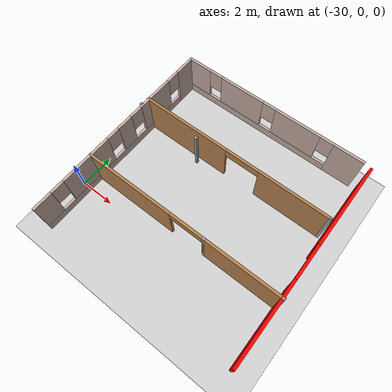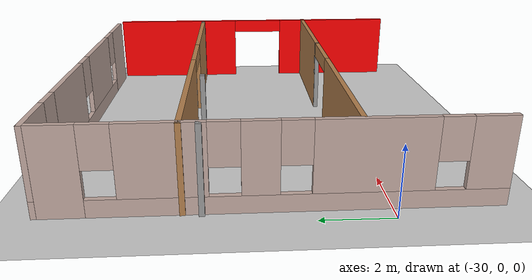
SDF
<sdf version="1.6">
 <world name="default">
  <model name="ground_plane">
   <static>1</static>
   <link name="link">
    <collision name="collision">
     <geometry><plane><normal>0 0 1</normal><size>100 100</size></plane></geometry>
     <surface><friction><ode><mu>100</mu><mu2>50</mu2></ode></friction></surface>
    </collision>
    <visual name="visual">
     <cast_shadows>0</cast_shadows>
     <geometry><plane><normal>0 0 1</normal><size>100 100</size></plane></geometry>
     <material>
      <script><uri>file://media/materials/scripts/gazebo.material</uri><name>Gazebo/Grey</name></script>
     </material>
    </visual>
   </link>
  </model>
  <model name="FloorPlan">
   <pose>0.30947 -3.19534 0 0 -0 0</pose>
   <link name="Wall_11">
    <pose>-18.2258 6.2811 0 0 -0 -1.5708</pose>
    <visual name="Wall_11_Visual_0">
     <pose>-3.31145 0 1.25 0 -0 0</pose>
     <geometry><box><size>4.97711 0.15 2.5</size></box></geometry>
     <material>
      <script><uri>file://media/materials/scripts/gazebo.material</uri><name>Gazebo/Grey</name></script>
      <ambient>1 0 0 1</ambient>
     </material>
     <meta><layer>0</layer></meta>
    </visual>
    <collision name="Wall_11_Collision_0">
     <geometry><box><size>4.97711 0.15 2.5</size></box></geometry>
     <pose>-3.31145 0 1.25 0 -0 0</pose>
    </collision>
    <visual name="Wall_11_Visual_1">
     <pose>3.48855 0 1.25 0 -0 0</pose>
     <geometry><box><size>4.62289 0.15 2.5</size></box></geometry>
     <material>
      <script><uri>file://media/materials/scripts/gazebo.material</uri><name>Gazebo/Grey</name></script>
      <ambient>1 0 0 1</ambient>
     </material>
     <meta><layer>0</layer></meta>
    </visual>
    <collision name="Wall_11_Collision_1">
     <geometry><box><size>4.62289 0.15 2.5</size></box></geometry>
     <pose>3.48855 0 1.25 0 -0 0</pose>
    </collision>
    <visual name="Wall_11_Visual_2">
     <pose>0.177109 0 2.25 0 -0 0</pose>
     <geometry><box><size>2 0.15 0.5</size></box></geometry>
     <material>
      <script><uri>file://media/materials/scripts/gazebo.material</uri><name>Gazebo/Grey</name></script>
      <ambient>1 0 0 1</ambient>
     </material>
     <meta><layer>0</layer></meta>
    </visual>
    <collision name="Wall_11_Collision_2">
     <geometry><box><size>2 0.15 0.5</size></box></geometry>
     <pose>0.177109 0 2.25 0 -0 0</pose>
    </collision>
   </link>
   <link name="Wall_13">
    <pose>-24.2574 12.1498 0 0 -0 3.14159</pose>
    <visual name="Wall_13_Visual_0">
     <pose>-4.7442 0 1.25 0 -0 0</pose>
     <geometry><box><size>1.7616 0.15 2.5</size></box></geometry>
     <material>
      <script><uri>file://media/materials/scripts/gazebo.material</uri><name>Gazebo/Grey</name></script>
      <ambient>0.760784 0.662745 0.627451 1</ambient>
     </material>
     <meta><layer>0</layer></meta>
    </visual>
    <collision name="Wall_13_Collision_0">
     <geometry><box><size>1.7616 0.15 2.5</size></box></geometry>
     <pose>-4.7442 0 1.25 0 -0 0</pose>
    </collision>
    <visual name="Wall_13_Visual_1">
     <pose>0.880798 0 0.25 0 -0 0</pose>
     <geometry><box><size>9.4884 0.15 0.5</size></box></geometry>
     <material>
      <script><uri>file://media/materials/scripts/gazebo.material</uri><name>Gazebo/Grey</name></script>
      <ambient>0.760784 0.662745 0.627451 1</ambient>
     </material>
     <meta><layer>0</layer></meta>
    </visual>
    <collision name="Wall_13_Collision_1">
     <geometry><box><size>9.4884 0.15 0.5</size></box></geometry>
     <pose>0.880798 0 0.25 0 -0 0</pose>
    </collision>
    <visual name="Wall_13_Visual_2">
     <pose>-1.67107 0 1.5 0 -0 0</pose>
     <geometry><box><size>2.78467 0.15 2</size></box></geometry>
     <material>
      <script><uri>file://media/materials/scripts/gazebo.material</uri><name>Gazebo/Grey</name></script>
      <ambient>0.760784 0.662745 0.627451 1</ambient>
     </material>
     <meta><layer>0</layer></meta>
    </visual>
    <collision name="Wall_13_Collision_2">
     <geometry><box><size>2.78467 0.15 2</size></box></geometry>
     <pose>-1.67107 0 1.5 0 -0 0</pose>
    </collision>
    <visual name="Wall_13_Visual_3">
     <pose>1.9136 0 1.5 0 -0 0</pose>
     <geometry><box><size>2.78467 0.15 2</size></box></geometry>
     <material>
      <script><uri>file://media/materials/scripts/gazebo.material</uri><name>Gazebo/Grey</name></script>
      <ambient>0.760784 0.662745 0.627451 1</ambient>
     </material>
     <meta><layer>0</layer></meta>
    </visual>
    <collision name="Wall_13_Collision_3">
     <geometry><box><size>2.78467 0.15 2</size></box></geometry>
     <pose>1.9136 0 1.5 0 -0 0</pose>
    </collision>
    <visual name="Wall_13_Visual_4">
     <pose>4.86547 0 1.5 0 -0 0</pose>
     <geometry><box><size>1.51907 0.15 2</size></box></geometry>
     <material>
      <script><uri>file://media/materials/scripts/gazebo.material</uri><name>Gazebo/Grey</name></script>
      <ambient>0.760784 0.662745 0.627451 1</ambient>
     </material>
     <meta><layer>0</layer></meta>
    </visual>
    <collision name="Wall_13_Collision_4">
     <geometry><box><size>1.51907 0.15 2</size></box></geometry>
     <pose>4.86547 0 1.5 0 -0 0</pose>
    </collision>
    <visual name="Wall_13_Visual_5">
     <pose>-3.4634 0 1.9 0 -0 0</pose>
     <geometry><box><size>0.8 0.15 1.2</size></box></geometry>
     <material>
      <script><uri>file://media/materials/scripts/gazebo.material</uri><name>Gazebo/Grey</name></script>
      <ambient>0.760784 0.662745 0.627451 1</ambient>
     </material>
     <meta><layer>0</layer></meta>
    </visual>
    <collision name="Wall_13_Collision_5">
     <geometry><box><size>0.8 0.15 1.2</size></box></geometry>
     <pose>-3.4634 0 1.9 0 -0 0</pose>
    </collision>
    <visual name="Wall_13_Visual_6">
     <pose>0.121265 0 1.9 0 -0 0</pose>
     <geometry><box><size>0.8 0.15 1.2</size></box></geometry>
     <material>
      <script><uri>file://media/materials/scripts/gazebo.material</uri><name>Gazebo/Grey</name></script>
      <ambient>0.760784 0.662745 0.627451 1</ambient>
     </material>
     <meta><layer>0</layer></meta>
    </visual>
    <collision name="Wall_13_Collision_6">
     <geometry><box><size>0.8 0.15 1.2</size></box></geometry>
     <pose>0.121265 0 1.9 0 -0 0</pose>
    </collision>
    <visual name="Wall_13_Visual_7">
     <pose>3.70593 0 1.9 0 -0 0</pose>
     <geometry><box><size>0.8 0.15 1.2</size></box></geometry>
     <material>
      <script><uri>file://media/materials/scripts/gazebo.material</uri><name>Gazebo/Grey</name></script>
      <ambient>0.760784 0.662745 0.627451 1</ambient>
     </material>
     <meta><layer>0</layer></meta>
    </visual>
    <collision name="Wall_13_Collision_7">
     <geometry><box><size>0.8 0.15 1.2</size></box></geometry>
     <pose>3.70593 0 1.9 0 -0 0</pose>
    </collision>
   </link>
   <link name="Wall_14">
    <pose>-29.8074 6.22478 0 0 -0 -1.5708</pose>
    <visual name="Wall_14_Visual_0">
     <pose>-5.33321 0 1.25 0 -0 0</pose>
     <geometry><box><size>1.33358 0.15 2.5</size></box></geometry>
     <material>
      <script><uri>file://media/materials/scripts/gazebo.material</uri><name>Gazebo/Grey</name></script>
      <ambient>0.760784 0.662745 0.627451 1</ambient>
     </material>
     <meta><layer>0</layer></meta>
    </visual>
    <collision name="Wall_14_Collision_0">
     <geometry><box><size>1.33358 0.15 2.5</size></box></geometry>
     <pose>-5.33321 0 1.25 0 -0 0</pose>
    </collision>
    <visual name="Wall_14_Visual_1">
     <pose>0.666789 0 0.25 0 -0 0</pose>
     <geometry><box><size>10.6664 0.15 0.5</size></box></geometry>
     <material>
      <script><uri>file://media/materials/scripts/gazebo.material</uri><name>Gazebo/Grey</name></script>
      <ambient>0.760784 0.662745 0.627451 1</ambient>
     </material>
     <meta><layer>0</layer></meta>
    </visual>
    <collision name="Wall_14_Collision_1">
     <geometry><box><size>10.6664 0.15 0.5</size></box></geometry>
     <pose>0.666789 0 0.25 0 -0 0</pose>
    </collision>
    <visual name="Wall_14_Visual_2">
     <pose>-2.7416 0 1.5 0 -0 0</pose>
     <geometry><box><size>2.24964 0.15 2</size></box></geometry>
     <material>
      <script><uri>file://media/materials/scripts/gazebo.material</uri><name>Gazebo/Grey</name></script>
      <ambient>0.760784 0.662745 0.627451 1</ambient>
     </material>
     <meta><layer>0</layer></meta>
    </visual>
    <collision name="Wall_14_Collision_2">
     <geometry><box><size>2.24964 0.15 2</size></box></geometry>
     <pose>-2.7416 0 1.5 0 -0 0</pose>
    </collision>
    <visual name="Wall_14_Visual_3">
     <pose>-0.333988 0 1.5 0 -0 0</pose>
     <geometry><box><size>0.965583 0.15 2</size></box></geometry>
     <material>
      <script><uri>file://media/materials/scripts/gazebo.material</uri><name>Gazebo/Grey</name></script>
      <ambient>0.760784 0.662745 0.627451 1</ambient>
     </material>
     <meta><layer>0</layer></meta>
    </visual>
    <collision name="Wall_14_Collision_3">
     <geometry><box><size>0.965583 0.15 2</size></box></geometry>
     <pose>-0.333988 0 1.5 0 -0 0</pose>
    </collision>
    <visual name="Wall_14_Visual_4">
     <pose>2.50164 0 1.5 0 -0 0</pose>
     <geometry><box><size>3.10568 0.15 2</size></box></geometry>
     <material>
      <script><uri>file://media/materials/scripts/gazebo.material</uri><name>Gazebo/Grey</name></script>
      <ambient>0.760784 0.662745 0.627451 1</ambient>
     </material>
     <meta><layer>0</layer></meta>
    </visual>
    <collision name="Wall_14_Collision_4">
     <geometry><box><size>3.10568 0.15 2</size></box></geometry>
     <pose>2.50164 0 1.5 0 -0 0</pose>
    </collision>
    <visual name="Wall_14_Visual_5">
     <pose>5.42724 0 1.5 0 -0 0</pose>
     <geometry><box><size>1.14552 0.15 2</size></box></geometry>
     <material>
      <script><uri>file://media/materials/scripts/gazebo.material</uri><name>Gazebo/Grey</name></script>
      <ambient>0.760784 0.662745 0.627451 1</ambient>
     </material>
     <meta><layer>0</layer></meta>
    </visual>
    <collision name="Wall_14_Collision_5">
     <geometry><box><size>1.14552 0.15 2</size></box></geometry>
     <pose>5.42724 0 1.5 0 -0 0</pose>
    </collision>
    <visual name="Wall_14_Visual_6">
     <pose>-4.26642 0 1.9 0 -0 0</pose>
     <geometry><box><size>0.8 0.15 1.2</size></box></geometry>
     <material>
      <script><uri>file://media/materials/scripts/gazebo.material</uri><name>Gazebo/Grey</name></script>
      <ambient>0.760784 0.662745 0.627451 1</ambient>
     </material>
     <meta><layer>0</layer></meta>
    </visual>
    <collision name="Wall_14_Collision_6">
     <geometry><box><size>0.8 0.15 1.2</size></box></geometry>
     <pose>-4.26642 0 1.9 0 -0 0</pose>
    </collision>
    <visual name="Wall_14_Visual_7">
     <pose>-1.21678 0 1.9 0 -0 0</pose>
     <geometry><box><size>0.8 0.15 1.2</size></box></geometry>
     <material>
      <script><uri>file://media/materials/scripts/gazebo.material</uri><name>Gazebo/Grey</name></script>
      <ambient>0.760784 0.662745 0.627451 1</ambient>
     </material>
     <meta><layer>0</layer></meta>
    </visual>
    <collision name="Wall_14_Collision_7">
     <geometry><box><size>0.8 0.15 1.2</size></box></geometry>
     <pose>-1.21678 0 1.9 0 -0 0</pose>
    </collision>
    <visual name="Wall_14_Visual_8">
     <pose>0.548803 0 1.9 0 -0 0</pose>
     <geometry><box><size>0.8 0.15 1.2</size></box></geometry>
     <material>
      <script><uri>file://media/materials/scripts/gazebo.material</uri><name>Gazebo/Grey</name></script>
      <ambient>0.760784 0.662745 0.627451 1</ambient>
     </material>
     <meta><layer>0</layer></meta>
    </visual>
    <collision name="Wall_14_Collision_8">
     <geometry><box><size>0.8 0.15 1.2</size></box></geometry>
     <pose>0.548803 0 1.9 0 -0 0</pose>
    </collision>
    <visual name="Wall_14_Visual_9">
     <pose>4.45449 0 1.9 0 -0 0</pose>
     <geometry><box><size>0.8 0.15 1.2</size></box></geometry>
     <material>
      <script><uri>file://media/materials/scripts/gazebo.material</uri><name>Gazebo/Grey</name></script>
      <ambient>0.760784 0.662745 0.627451 1</ambient>
     </material>
     <meta><layer>0</layer></meta>
    </visual>
    <collision name="Wall_14_Collision_9">
     <geometry><box><size>0.8 0.15 1.2</size></box></geometry>
     <pose>4.45449 0 1.9 0 -0 0</pose>
    </collision>
   </link>
   <link name="Wall_19">
    <collision name="Wall_19_Collision">
     <geometry><box><size>0.15 0.15 2.5</size></box></geometry>
     <pose>0 0 1.25 0 -0 0</pose>
    </collision>
    <visual name="Wall_19_Visual">
     <pose>0 0 1.25 0 -0 0</pose>
     <geometry><box><size>0.15 0.15 2.5</size></box></geometry>
     <material>
      <script><uri>file://media/materials/scripts/gazebo.material</uri><name>Gazebo/Grey</name></script>
      <ambient>1 1 1 1</ambient>
     </material>
     <meta><layer>0</layer></meta>
    </visual>
    <pose>-29.9047 8.03008 0 0 -0 0</pose>
   </link>
   <link name="Wall_23">
    <collision name="Wall_23_Collision">
     <geometry><box><size>0.15 0.15 2.5</size></box></geometry>
     <pose>0 0 1.25 0 -0 0</pose>
    </collision>
    <visual name="Wall_23_Visual">
     <pose>0 0 1.25 0 -0 0</pose>
     <geometry><box><size>0.15 0.15 2.5</size></box></geometry>
     <material>
      <script><uri>file://media/materials/scripts/gazebo.material</uri><name>Gazebo/Grey</name></script>
      <ambient>1 1 1 1</ambient>
     </material>
     <meta><layer>0</layer></meta>
    </visual>
    <pose>-26.2408 8.12916 0 0 -0 0</pose>
   </link>
   <link name="Wall_34">
    <pose>-23.9824 4.0709 0 0 -0 0</pose>
    <visual name="Wall_34_Visual_0">
     <pose>-3.2427 0 1.25 0 -0 0</pose>
     <geometry><box><size>5.26459 0.15 2.5</size></box></geometry>
     <material>
      <script><uri>file://media/materials/scripts/gazebo.material</uri><name>Gazebo/Wood</name></script>
      <ambient>1 1 1 1</ambient>
     </material>
     <meta><layer>0</layer></meta>
    </visual>
    <collision name="Wall_34_Collision_0">
     <geometry><box><size>5.26459 0.15 2.5</size></box></geometry>
     <pose>-3.2427 0 1.25 0 -0 0</pose>
    </collision>
    <visual name="Wall_34_Visual_1">
     <pose>3.6323 0 1.25 0 -0 0</pose>
     <geometry><box><size>4.48541 0.15 2.5</size></box></geometry>
     <material>
      <script><uri>file://media/materials/scripts/gazebo.material</uri><name>Gazebo/Wood</name></script>
      <ambient>1 1 1 1</ambient>
     </material>
     <meta><layer>0</layer></meta>
    </visual>
    <collision name="Wall_34_Collision_1">
     <geometry><box><size>4.48541 0.15 2.5</size></box></geometry>
     <pose>3.6323 0 1.25 0 -0 0</pose>
    </collision>
    <visual name="Wall_34_Visual_2">
     <pose>0.389591 0 2.25 0 -0 0</pose>
     <geometry><box><size>2 0.15 0.5</size></box></geometry>
     <material>
      <script><uri>file://media/materials/scripts/gazebo.material</uri><name>Gazebo/Wood</name></script>
      <ambient>1 1 1 1</ambient>
     </material>
     <meta><layer>0</layer></meta>
    </visual>
    <collision name="Wall_34_Collision_2">
     <geometry><box><size>2 0.15 0.5</size></box></geometry>
     <pose>0.389591 0 2.25 0 -0 0</pose>
    </collision>
   </link>
   <link name="Wall_35">
    <collision name="Wall_35_Collision">
     <geometry><box><size>0.16 0.15 2.5</size></box></geometry>
     <pose>0 0 1.25 0 -0 0</pose>
    </collision>
    <visual name="Wall_35_Visual">
     <pose>0 0 1.25 0 -0 0</pose>
     <geometry><box><size>0.16 0.15 2.5</size></box></geometry>
     <material>
      <script><uri>file://media/materials/scripts/gazebo.material</uri><name>Gazebo/Grey</name></script>
      <ambient>1 1 1 1</ambient>
     </material>
     <meta><layer>0</layer></meta>
    </visual>
    <pose>-18.1774 4.0709 0 0 -0 0</pose>
   </link>
   <link name="Wall_40">
    <collision name="Wall_40_Collision">
     <geometry><box><size>0.16 0.15 2.5</size></box></geometry>
     <pose>0 0 1.25 0 -0 0</pose>
    </collision>
    <visual name="Wall_40_Visual">
     <pose>0 0 1.25 0 -0 0</pose>
     <geometry><box><size>0.16 0.15 2.5</size></box></geometry>
     <material>
      <script><uri>file://media/materials/scripts/gazebo.material</uri><name>Gazebo/Grey</name></script>
      <ambient>1 1 1 1</ambient>
     </material>
     <meta><layer>0</layer></meta>
    </visual>
    <pose>-22.5545 4.0709 0 0 -0 0</pose>
   </link>
   <link name="Wall_61">
    <pose>-24.1609 8.5116 0 0 -0 0</pose>
    <visual name="Wall_61_Visual_0">
     <pose>-3.07695 0 1.25 0 -0 0</pose>
     <geometry><box><size>5.34609 0.15 2.5</size></box></geometry>
     <material>
      <script><uri>file://media/materials/scripts/gazebo.material</uri><name>Gazebo/Wood</name></script>
      <ambient>1 1 1 1</ambient>
     </material>
     <meta><layer>0</layer></meta>
    </visual>
    <collision name="Wall_61_Collision_0">
     <geometry><box><size>5.34609 0.15 2.5</size></box></geometry>
     <pose>-3.07695 0 1.25 0 -0 0</pose>
    </collision>
    <visual name="Wall_61_Visual_1">
     <pose>3.67305 0 1.25 0 -0 0</pose>
     <geometry><box><size>4.15391 0.15 2.5</size></box></geometry>
     <material>
      <script><uri>file://media/materials/scripts/gazebo.material</uri><name>Gazebo/Wood</name></script>
      <ambient>1 1 1 1</ambient>
     </material>
     <meta><layer>0</layer></meta>
    </visual>
    <collision name="Wall_61_Collision_1">
     <geometry><box><size>4.15391 0.15 2.5</size></box></geometry>
     <pose>3.67305 0 1.25 0 -0 0</pose>
    </collision>
    <visual name="Wall_61_Visual_2">
     <pose>0.596094 0 2.25 0 -0 0</pose>
     <geometry><box><size>2 0.15 0.5</size></box></geometry>
     <material>
      <script><uri>file://media/materials/scripts/gazebo.material</uri><name>Gazebo/Wood</name></script>
      <ambient>1 1 1 1</ambient>
     </material>
     <meta><layer>0</layer></meta>
    </visual>
    <collision name="Wall_61_Collision_2">
     <geometry><box><size>2 0.15 0.5</size></box></geometry>
     <pose>0.596094 0 2.25 0 -0 0</pose>
    </collision>
   </link>
   <link name="Wall_62">
    <collision name="Wall_62_Collision">
     <geometry><box><size>0.16 0.15 2.5</size></box></geometry>
     <pose>0 0 1.25 0 -0 0</pose>
    </collision>
    <visual name="Wall_62_Visual">
     <pose>0 0 1.25 0 -0 0</pose>
     <geometry><box><size>0.16 0.15 2.5</size></box></geometry>
     <material>
      <script><uri>file://media/materials/scripts/gazebo.material</uri><name>Gazebo/Grey</name></script>
      <ambient>1 1 1 1</ambient>
     </material>
     <meta><layer>0</layer></meta>
    </visual>
    <pose>-18.4809 8.5116 0 0 -0 0</pose>
   </link>
   <link name="Wall_63">
    <collision name="Wall_63_Collision">
     <geometry><box><size>0.16 0.15 2.5</size></box></geometry>
     <pose>0 0 1.25 0 -0 0</pose>
    </collision>
    <visual name="Wall_63_Visual">
     <pose>0 0 1.25 0 -0 0</pose>
     <geometry><box><size>0.16 0.15 2.5</size></box></geometry>
     <material>
      <script><uri>file://media/materials/scripts/gazebo.material</uri><name>Gazebo/Grey</name></script>
      <ambient>1 1 1 1</ambient>
     </material>
     <meta><layer>0</layer></meta>
    </visual>
    <pose>-18.4709 8.5116 0 0 -0 0</pose>
   </link>
   <static>1</static>
  </model>
 </world>
</sdf>
